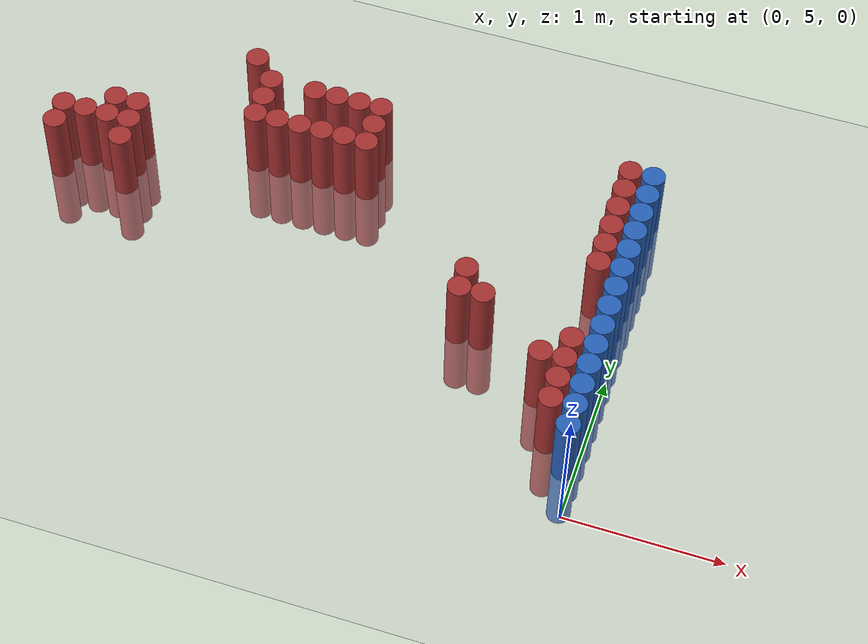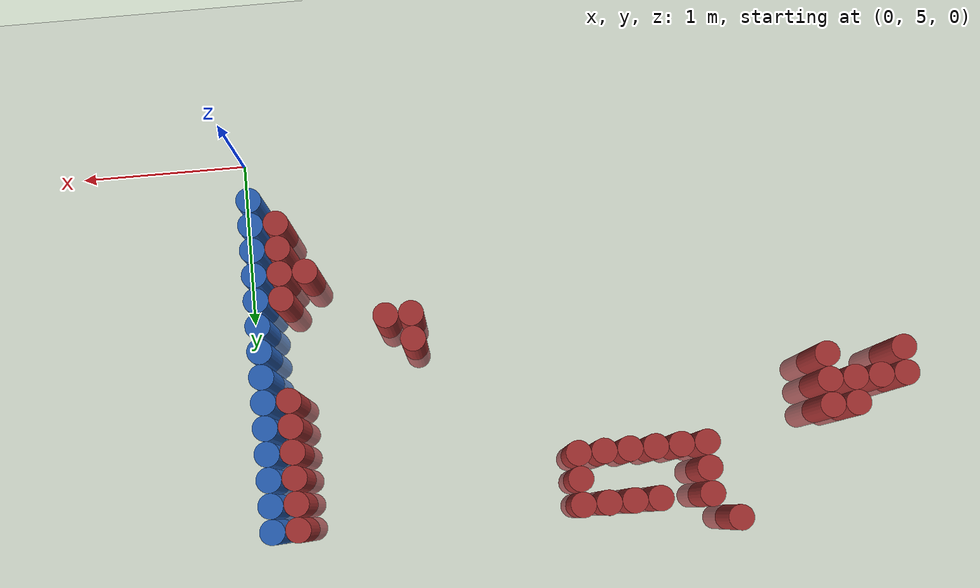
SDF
<sdf version="1.6">
 <world name="default">
  <model name="ground_plane">
   <static>1</static>
   <link name="link">
    <collision name="collision">
     <geometry><plane><normal>0 0 1</normal><size>100 100</size></plane></geometry>
     <surface><friction><ode><mu>100</mu><mu2>50</mu2></ode></friction></surface>
    </collision>
    <visual name="visual">
     <cast_shadows>0</cast_shadows>
     <geometry><plane><normal>0 0 1</normal><size>100 100</size></plane></geometry>
     <material>
      <script><uri>file://media/materials/scripts/gazebo.material</uri><name>Gazebo/Grey</name></script>
     </material>
    </visual>
   </link>
  </model>
  <model name="unit_cylinder_150">
   <static>1</static>
   <pose>-3.825000 6.525000 0.000000 0.000000 0.000000 0.000000</pose>
   <link name="link">
    <inertial>
     <mass>1</mass>
     <inertia><ixx>0.145833</ixx><ixy>0</ixy><ixz>0</ixz><iyy>0.145833</iyy><iyz>0</iyz><izz>0.125</izz></inertia>
    </inertial>
    <collision name="collision">
     <geometry><cylinder><radius>0.075000</radius><length>1</length></cylinder></geometry>
    </collision>
    <visual name="visual">
     <geometry><cylinder><radius>0.075000</radius><length>1</length></cylinder></geometry>
     <material>
      <ambient>0.648000 0.192000 0.192000 1</ambient>
      <diffuse>0.648000 0.192000 0.192000 1</diffuse>
     </material>
     <material>
      <script><name>Gazebo/Grey</name><uri>file://media/materials/scripts/gazebo.material</uri></script>
     </material>
    </visual>
   </link>
  </model>
  <model name="unit_cylinder_151">
   <static>1</static>
   <pose>-3.825000 6.675000 0.000000 0.000000 0.000000 0.000000</pose>
   <link name="link">
    <inertial>
     <mass>1</mass>
     <inertia><ixx>0.145833</ixx><ixy>0</ixy><ixz>0</ixz><iyy>0.145833</iyy><iyz>0</iyz><izz>0.125</izz></inertia>
    </inertial>
    <collision name="collision">
     <geometry><cylinder><radius>0.075000</radius><length>1</length></cylinder></geometry>
    </collision>
    <visual name="visual">
     <geometry><cylinder><radius>0.075000</radius><length>1</length></cylinder></geometry>
     <material>
      <ambient>0.648000 0.192000 0.192000 1</ambient>
      <diffuse>0.648000 0.192000 0.192000 1</diffuse>
     </material>
     <material>
      <script><name>Gazebo/Grey</name><uri>file://media/materials/scripts/gazebo.material</uri></script>
     </material>
    </visual>
   </link>
  </model>
  <model name="unit_cylinder_152">
   <static>1</static>
   <pose>-3.675000 6.675000 0.000000 0.000000 0.000000 0.000000</pose>
   <link name="link">
    <inertial>
     <mass>1</mass>
     <inertia><ixx>0.145833</ixx><ixy>0</ixy><ixz>0</ixz><iyy>0.145833</iyy><iyz>0</iyz><izz>0.125</izz></inertia>
    </inertial>
    <collision name="collision">
     <geometry><cylinder><radius>0.075000</radius><length>1</length></cylinder></geometry>
    </collision>
    <visual name="visual">
     <geometry><cylinder><radius>0.075000</radius><length>1</length></cylinder></geometry>
     <material>
      <ambient>0.648000 0.192000 0.192000 1</ambient>
      <diffuse>0.648000 0.192000 0.192000 1</diffuse>
     </material>
     <material>
      <script><name>Gazebo/Grey</name><uri>file://media/materials/scripts/gazebo.material</uri></script>
     </material>
    </visual>
   </link>
  </model>
  <model name="unit_cylinder_153">
   <static>1</static>
   <pose>-3.525000 6.675000 0.000000 0.000000 0.000000 0.000000</pose>
   <link name="link">
    <inertial>
     <mass>1</mass>
     <inertia><ixx>0.145833</ixx><ixy>0</ixy><ixz>0</ixz><iyy>0.145833</iyy><iyz>0</iyz><izz>0.125</izz></inertia>
    </inertial>
    <collision name="collision">
     <geometry><cylinder><radius>0.075000</radius><length>1</length></cylinder></geometry>
    </collision>
    <visual name="visual">
     <geometry><cylinder><radius>0.075000</radius><length>1</length></cylinder></geometry>
     <material>
      <ambient>0.648000 0.192000 0.192000 1</ambient>
      <diffuse>0.648000 0.192000 0.192000 1</diffuse>
     </material>
     <material>
      <script><name>Gazebo/Grey</name><uri>file://media/materials/scripts/gazebo.material</uri></script>
     </material>
    </visual>
   </link>
  </model>
  <model name="unit_cylinder_154">
   <static>1</static>
   <pose>-3.525000 6.825000 0.000000 0.000000 0.000000 0.000000</pose>
   <link name="link">
    <inertial>
     <mass>1</mass>
     <inertia><ixx>0.145833</ixx><ixy>0</ixy><ixz>0</ixz><iyy>0.145833</iyy><iyz>0</iyz><izz>0.125</izz></inertia>
    </inertial>
    <collision name="collision">
     <geometry><cylinder><radius>0.075000</radius><length>1</length></cylinder></geometry>
    </collision>
    <visual name="visual">
     <geometry><cylinder><radius>0.075000</radius><length>1</length></cylinder></geometry>
     <material>
      <ambient>0.648000 0.192000 0.192000 1</ambient>
      <diffuse>0.648000 0.192000 0.192000 1</diffuse>
     </material>
     <material>
      <script><name>Gazebo/Grey</name><uri>file://media/materials/scripts/gazebo.material</uri></script>
     </material>
    </visual>
   </link>
  </model>
  <model name="unit_cylinder_156">
   <static>1</static>
   <pose>-3.375000 6.525000 0.000000 0.000000 0.000000 0.000000</pose>
   <link name="link">
    <inertial>
     <mass>1</mass>
     <inertia><ixx>0.145833</ixx><ixy>0</ixy><ixz>0</ixz><iyy>0.145833</iyy><iyz>0</iyz><izz>0.125</izz></inertia>
    </inertial>
    <collision name="collision">
     <geometry><cylinder><radius>0.075000</radius><length>1</length></cylinder></geometry>
    </collision>
    <visual name="visual">
     <geometry><cylinder><radius>0.075000</radius><length>1</length></cylinder></geometry>
     <material>
      <ambient>0.648000 0.192000 0.192000 1</ambient>
      <diffuse>0.648000 0.192000 0.192000 1</diffuse>
     </material>
     <material>
      <script><name>Gazebo/Grey</name><uri>file://media/materials/scripts/gazebo.material</uri></script>
     </material>
    </visual>
   </link>
  </model>
  <model name="unit_cylinder_157">
   <static>1</static>
   <pose>-3.375000 6.675000 0.000000 0.000000 0.000000 0.000000</pose>
   <link name="link">
    <inertial>
     <mass>1</mass>
     <inertia><ixx>0.145833</ixx><ixy>0</ixy><ixz>0</ixz><iyy>0.145833</iyy><iyz>0</iyz><izz>0.125</izz></inertia>
    </inertial>
    <collision name="collision">
     <geometry><cylinder><radius>0.075000</radius><length>1</length></cylinder></geometry>
    </collision>
    <visual name="visual">
     <geometry><cylinder><radius>0.075000</radius><length>1</length></cylinder></geometry>
     <material>
      <ambient>0.648000 0.192000 0.192000 1</ambient>
      <diffuse>0.648000 0.192000 0.192000 1</diffuse>
     </material>
     <material>
      <script><name>Gazebo/Grey</name><uri>file://media/materials/scripts/gazebo.material</uri></script>
     </material>
    </visual>
   </link>
  </model>
  <model name="unit_cylinder_158">
   <static>1</static>
   <pose>-3.375000 6.825000 0.000000 0.000000 0.000000 0.000000</pose>
   <link name="link">
    <inertial>
     <mass>1</mass>
     <inertia><ixx>0.145833</ixx><ixy>0</ixy><ixz>0</ixz><iyy>0.145833</iyy><iyz>0</iyz><izz>0.125</izz></inertia>
    </inertial>
    <collision name="collision">
     <geometry><cylinder><radius>0.075000</radius><length>1</length></cylinder></geometry>
    </collision>
    <visual name="visual">
     <geometry><cylinder><radius>0.075000</radius><length>1</length></cylinder></geometry>
     <material>
      <ambient>0.648000 0.192000 0.192000 1</ambient>
      <diffuse>0.648000 0.192000 0.192000 1</diffuse>
     </material>
     <material>
      <script><name>Gazebo/Grey</name><uri>file://media/materials/scripts/gazebo.material</uri></script>
     </material>
    </visual>
   </link>
  </model>
  <model name="unit_cylinder_162">
   <static>1</static>
   <pose>-2.775000 7.425000 0.000000 0.000000 0.000000 0.000000</pose>
   <link name="link">
    <inertial>
     <mass>1</mass>
     <inertia><ixx>0.145833</ixx><ixy>0</ixy><ixz>0</ixz><iyy>0.145833</iyy><iyz>0</iyz><izz>0.125</izz></inertia>
    </inertial>
    <collision name="collision">
     <geometry><cylinder><radius>0.075000</radius><length>1</length></cylinder></geometry>
    </collision>
    <visual name="visual">
     <geometry><cylinder><radius>0.075000</radius><length>1</length></cylinder></geometry>
     <material>
      <ambient>0.648000 0.192000 0.192000 1</ambient>
      <diffuse>0.648000 0.192000 0.192000 1</diffuse>
     </material>
     <material>
      <script><name>Gazebo/Grey</name><uri>file://media/materials/scripts/gazebo.material</uri></script>
     </material>
    </visual>
   </link>
  </model>
  <model name="unit_cylinder_164">
   <static>1</static>
   <pose>-2.625000 6.975000 0.000000 0.000000 0.000000 0.000000</pose>
   <link name="link">
    <inertial>
     <mass>1</mass>
     <inertia><ixx>0.145833</ixx><ixy>0</ixy><ixz>0</ixz><iyy>0.145833</iyy><iyz>0</iyz><izz>0.125</izz></inertia>
    </inertial>
    <collision name="collision">
     <geometry><cylinder><radius>0.075000</radius><length>1</length></cylinder></geometry>
    </collision>
    <visual name="visual">
     <geometry><cylinder><radius>0.075000</radius><length>1</length></cylinder></geometry>
     <material>
      <ambient>0.648000 0.192000 0.192000 1</ambient>
      <diffuse>0.648000 0.192000 0.192000 1</diffuse>
     </material>
     <material>
      <script><name>Gazebo/Grey</name><uri>file://media/materials/scripts/gazebo.material</uri></script>
     </material>
    </visual>
   </link>
  </model>
  <model name="unit_cylinder_165">
   <static>1</static>
   <pose>-2.625000 7.125000 0.000000 0.000000 0.000000 0.000000</pose>
   <link name="link">
    <inertial>
     <mass>1</mass>
     <inertia><ixx>0.145833</ixx><ixy>0</ixy><ixz>0</ixz><iyy>0.145833</iyy><iyz>0</iyz><izz>0.125</izz></inertia>
    </inertial>
    <collision name="collision">
     <geometry><cylinder><radius>0.075000</radius><length>1</length></cylinder></geometry>
    </collision>
    <visual name="visual">
     <geometry><cylinder><radius>0.075000</radius><length>1</length></cylinder></geometry>
     <material>
      <ambient>0.648000 0.192000 0.192000 1</ambient>
      <diffuse>0.648000 0.192000 0.192000 1</diffuse>
     </material>
     <material>
      <script><name>Gazebo/Grey</name><uri>file://media/materials/scripts/gazebo.material</uri></script>
     </material>
    </visual>
   </link>
  </model>
  <model name="unit_cylinder_166">
   <static>1</static>
   <pose>-2.625000 7.275000 0.000000 0.000000 0.000000 0.000000</pose>
   <link name="link">
    <inertial>
     <mass>1</mass>
     <inertia><ixx>0.145833</ixx><ixy>0</ixy><ixz>0</ixz><iyy>0.145833</iyy><iyz>0</iyz><izz>0.125</izz></inertia>
    </inertial>
    <collision name="collision">
     <geometry><cylinder><radius>0.075000</radius><length>1</length></cylinder></geometry>
    </collision>
    <visual name="visual">
     <geometry><cylinder><radius>0.075000</radius><length>1</length></cylinder></geometry>
     <material>
      <ambient>0.648000 0.192000 0.192000 1</ambient>
      <diffuse>0.648000 0.192000 0.192000 1</diffuse>
     </material>
     <material>
      <script><name>Gazebo/Grey</name><uri>file://media/materials/scripts/gazebo.material</uri></script>
     </material>
    </visual>
   </link>
  </model>
  <model name="unit_cylinder_170">
   <static>1</static>
   <pose>-2.475000 6.975000 0.000000 0.000000 0.000000 0.000000</pose>
   <link name="link">
    <inertial>
     <mass>1</mass>
     <inertia><ixx>0.145833</ixx><ixy>0</ixy><ixz>0</ixz><iyy>0.145833</iyy><iyz>0</iyz><izz>0.125</izz></inertia>
    </inertial>
    <collision name="collision">
     <geometry><cylinder><radius>0.075000</radius><length>1</length></cylinder></geometry>
    </collision>
    <visual name="visual">
     <geometry><cylinder><radius>0.075000</radius><length>1</length></cylinder></geometry>
     <material>
      <ambient>0.648000 0.192000 0.192000 1</ambient>
      <diffuse>0.648000 0.192000 0.192000 1</diffuse>
     </material>
     <material>
      <script><name>Gazebo/Grey</name><uri>file://media/materials/scripts/gazebo.material</uri></script>
     </material>
    </visual>
   </link>
  </model>
  <model name="unit_cylinder_173">
   <static>1</static>
   <pose>-2.325000 6.975000 0.000000 0.000000 0.000000 0.000000</pose>
   <link name="link">
    <inertial>
     <mass>1</mass>
     <inertia><ixx>0.145833</ixx><ixy>0</ixy><ixz>0</ixz><iyy>0.145833</iyy><iyz>0</iyz><izz>0.125</izz></inertia>
    </inertial>
    <collision name="collision">
     <geometry><cylinder><radius>0.075000</radius><length>1</length></cylinder></geometry>
    </collision>
    <visual name="visual">
     <geometry><cylinder><radius>0.075000</radius><length>1</length></cylinder></geometry>
     <material>
      <ambient>0.648000 0.192000 0.192000 1</ambient>
      <diffuse>0.648000 0.192000 0.192000 1</diffuse>
     </material>
     <material>
      <script><name>Gazebo/Grey</name><uri>file://media/materials/scripts/gazebo.material</uri></script>
     </material>
    </visual>
   </link>
  </model>
  <model name="unit_cylinder_174">
   <static>1</static>
   <pose>-2.325000 7.275000 0.000000 0.000000 0.000000 0.000000</pose>
   <link name="link">
    <inertial>
     <mass>1</mass>
     <inertia><ixx>0.145833</ixx><ixy>0</ixy><ixz>0</ixz><iyy>0.145833</iyy><iyz>0</iyz><izz>0.125</izz></inertia>
    </inertial>
    <collision name="collision">
     <geometry><cylinder><radius>0.075000</radius><length>1</length></cylinder></geometry>
    </collision>
    <visual name="visual">
     <geometry><cylinder><radius>0.075000</radius><length>1</length></cylinder></geometry>
     <material>
      <ambient>0.648000 0.192000 0.192000 1</ambient>
      <diffuse>0.648000 0.192000 0.192000 1</diffuse>
     </material>
     <material>
      <script><name>Gazebo/Grey</name><uri>file://media/materials/scripts/gazebo.material</uri></script>
     </material>
    </visual>
   </link>
  </model>
  <model name="unit_cylinder_176">
   <static>1</static>
   <pose>-2.175000 6.975000 0.000000 0.000000 0.000000 0.000000</pose>
   <link name="link">
    <inertial>
     <mass>1</mass>
     <inertia><ixx>0.145833</ixx><ixy>0</ixy><ixz>0</ixz><iyy>0.145833</iyy><iyz>0</iyz><izz>0.125</izz></inertia>
    </inertial>
    <collision name="collision">
     <geometry><cylinder><radius>0.075000</radius><length>1</length></cylinder></geometry>
    </collision>
    <visual name="visual">
     <geometry><cylinder><radius>0.075000</radius><length>1</length></cylinder></geometry>
     <material>
      <ambient>0.648000 0.192000 0.192000 1</ambient>
      <diffuse>0.648000 0.192000 0.192000 1</diffuse>
     </material>
     <material>
      <script><name>Gazebo/Grey</name><uri>file://media/materials/scripts/gazebo.material</uri></script>
     </material>
    </visual>
   </link>
  </model>
  <model name="unit_cylinder_177">
   <static>1</static>
   <pose>-2.175000 7.275000 0.000000 0.000000 0.000000 0.000000</pose>
   <link name="link">
    <inertial>
     <mass>1</mass>
     <inertia><ixx>0.145833</ixx><ixy>0</ixy><ixz>0</ixz><iyy>0.145833</iyy><iyz>0</iyz><izz>0.125</izz></inertia>
    </inertial>
    <collision name="collision">
     <geometry><cylinder><radius>0.075000</radius><length>1</length></cylinder></geometry>
    </collision>
    <visual name="visual">
     <geometry><cylinder><radius>0.075000</radius><length>1</length></cylinder></geometry>
     <material>
      <ambient>0.648000 0.192000 0.192000 1</ambient>
      <diffuse>0.648000 0.192000 0.192000 1</diffuse>
     </material>
     <material>
      <script><name>Gazebo/Grey</name><uri>file://media/materials/scripts/gazebo.material</uri></script>
     </material>
    </visual>
   </link>
  </model>
  <model name="unit_cylinder_178">
   <static>1</static>
   <pose>-2.025000 6.975000 0.000000 0.000000 0.000000 0.000000</pose>
   <link name="link">
    <inertial>
     <mass>1</mass>
     <inertia><ixx>0.145833</ixx><ixy>0</ixy><ixz>0</ixz><iyy>0.145833</iyy><iyz>0</iyz><izz>0.125</izz></inertia>
    </inertial>
    <collision name="collision">
     <geometry><cylinder><radius>0.075000</radius><length>1</length></cylinder></geometry>
    </collision>
    <visual name="visual">
     <geometry><cylinder><radius>0.075000</radius><length>1</length></cylinder></geometry>
     <material>
      <ambient>0.648000 0.192000 0.192000 1</ambient>
      <diffuse>0.648000 0.192000 0.192000 1</diffuse>
     </material>
     <material>
      <script><name>Gazebo/Grey</name><uri>file://media/materials/scripts/gazebo.material</uri></script>
     </material>
    </visual>
   </link>
  </model>
  <model name="unit_cylinder_179">
   <static>1</static>
   <pose>-2.025000 7.275000 0.000000 0.000000 0.000000 0.000000</pose>
   <link name="link">
    <inertial>
     <mass>1</mass>
     <inertia><ixx>0.145833</ixx><ixy>0</ixy><ixz>0</ixz><iyy>0.145833</iyy><iyz>0</iyz><izz>0.125</izz></inertia>
    </inertial>
    <collision name="collision">
     <geometry><cylinder><radius>0.075000</radius><length>1</length></cylinder></geometry>
    </collision>
    <visual name="visual">
     <geometry><cylinder><radius>0.075000</radius><length>1</length></cylinder></geometry>
     <material>
      <ambient>0.648000 0.192000 0.192000 1</ambient>
      <diffuse>0.648000 0.192000 0.192000 1</diffuse>
     </material>
     <material>
      <script><name>Gazebo/Grey</name><uri>file://media/materials/scripts/gazebo.material</uri></script>
     </material>
    </visual>
   </link>
  </model>
  <model name="unit_cylinder_180">
   <static>1</static>
   <pose>-1.875000 6.975000 0.000000 0.000000 0.000000 0.000000</pose>
   <link name="link">
    <inertial>
     <mass>1</mass>
     <inertia><ixx>0.145833</ixx><ixy>0</ixy><ixz>0</ixz><iyy>0.145833</iyy><iyz>0</iyz><izz>0.125</izz></inertia>
    </inertial>
    <collision name="collision">
     <geometry><cylinder><radius>0.075000</radius><length>1</length></cylinder></geometry>
    </collision>
    <visual name="visual">
     <geometry><cylinder><radius>0.075000</radius><length>1</length></cylinder></geometry>
     <material>
      <ambient>0.648000 0.192000 0.192000 1</ambient>
      <diffuse>0.648000 0.192000 0.192000 1</diffuse>
     </material>
     <material>
      <script><name>Gazebo/Grey</name><uri>file://media/materials/scripts/gazebo.material</uri></script>
     </material>
    </visual>
   </link>
  </model>
  <model name="unit_cylinder_181">
   <static>1</static>
   <pose>-1.875000 7.125000 0.000000 0.000000 0.000000 0.000000</pose>
   <link name="link">
    <inertial>
     <mass>1</mass>
     <inertia><ixx>0.145833</ixx><ixy>0</ixy><ixz>0</ixz><iyy>0.145833</iyy><iyz>0</iyz><izz>0.125</izz></inertia>
    </inertial>
    <collision name="collision">
     <geometry><cylinder><radius>0.075000</radius><length>1</length></cylinder></geometry>
    </collision>
    <visual name="visual">
     <geometry><cylinder><radius>0.075000</radius><length>1</length></cylinder></geometry>
     <material>
      <ambient>0.648000 0.192000 0.192000 1</ambient>
      <diffuse>0.648000 0.192000 0.192000 1</diffuse>
     </material>
     <material>
      <script><name>Gazebo/Grey</name><uri>file://media/materials/scripts/gazebo.material</uri></script>
     </material>
    </visual>
   </link>
  </model>
  <model name="unit_cylinder_182">
   <static>1</static>
   <pose>-1.875000 7.275000 0.000000 0.000000 0.000000 0.000000</pose>
   <link name="link">
    <inertial>
     <mass>1</mass>
     <inertia><ixx>0.145833</ixx><ixy>0</ixy><ixz>0</ixz><iyy>0.145833</iyy><iyz>0</iyz><izz>0.125</izz></inertia>
    </inertial>
    <collision name="collision">
     <geometry><cylinder><radius>0.075000</radius><length>1</length></cylinder></geometry>
    </collision>
    <visual name="visual">
     <geometry><cylinder><radius>0.075000</radius><length>1</length></cylinder></geometry>
     <material>
      <ambient>0.648000 0.192000 0.192000 1</ambient>
      <diffuse>0.648000 0.192000 0.192000 1</diffuse>
     </material>
     <material>
      <script><name>Gazebo/Grey</name><uri>file://media/materials/scripts/gazebo.material</uri></script>
     </material>
    </visual>
   </link>
  </model>
  <model name="unit_cylinder_188">
   <static>1</static>
   <pose>-0.975000 6.075000 0.000000 0.000000 0.000000 0.000000</pose>
   <link name="link">
    <inertial>
     <mass>1</mass>
     <inertia><ixx>0.145833</ixx><ixy>0</ixy><ixz>0</ixz><iyy>0.145833</iyy><iyz>0</iyz><izz>0.125</izz></inertia>
    </inertial>
    <collision name="collision">
     <geometry><cylinder><radius>0.075000</radius><length>1</length></cylinder></geometry>
    </collision>
    <visual name="visual">
     <geometry><cylinder><radius>0.075000</radius><length>1</length></cylinder></geometry>
     <material>
      <ambient>0.648000 0.192000 0.192000 1</ambient>
      <diffuse>0.648000 0.192000 0.192000 1</diffuse>
     </material>
     <material>
      <script><name>Gazebo/Grey</name><uri>file://media/materials/scripts/gazebo.material</uri></script>
     </material>
    </visual>
   </link>
  </model>
  <model name="unit_cylinder_189">
   <static>1</static>
   <pose>-0.975000 6.225000 0.000000 0.000000 0.000000 0.000000</pose>
   <link name="link">
    <inertial>
     <mass>1</mass>
     <inertia><ixx>0.145833</ixx><ixy>0</ixy><ixz>0</ixz><iyy>0.145833</iyy><iyz>0</iyz><izz>0.125</izz></inertia>
    </inertial>
    <collision name="collision">
     <geometry><cylinder><radius>0.075000</radius><length>1</length></cylinder></geometry>
    </collision>
    <visual name="visual">
     <geometry><cylinder><radius>0.075000</radius><length>1</length></cylinder></geometry>
     <material>
      <ambient>0.648000 0.192000 0.192000 1</ambient>
      <diffuse>0.648000 0.192000 0.192000 1</diffuse>
     </material>
     <material>
      <script><name>Gazebo/Grey</name><uri>file://media/materials/scripts/gazebo.material</uri></script>
     </material>
    </visual>
   </link>
  </model>
  <model name="unit_cylinder_190">
   <static>1</static>
   <pose>-0.825000 6.075000 0.000000 0.000000 0.000000 0.000000</pose>
   <link name="link">
    <inertial>
     <mass>1</mass>
     <inertia><ixx>0.145833</ixx><ixy>0</ixy><ixz>0</ixz><iyy>0.145833</iyy><iyz>0</iyz><izz>0.125</izz></inertia>
    </inertial>
    <collision name="collision">
     <geometry><cylinder><radius>0.075000</radius><length>1</length></cylinder></geometry>
    </collision>
    <visual name="visual">
     <geometry><cylinder><radius>0.075000</radius><length>1</length></cylinder></geometry>
     <material>
      <ambient>0.648000 0.192000 0.192000 1</ambient>
      <diffuse>0.648000 0.192000 0.192000 1</diffuse>
     </material>
     <material>
      <script><name>Gazebo/Grey</name><uri>file://media/materials/scripts/gazebo.material</uri></script>
     </material>
    </visual>
   </link>
  </model>
  <model name="unit_cylinder_193">
   <static>1</static>
   <pose>-0.375000 5.775000 0.000000 0.000000 0.000000 0.000000</pose>
   <link name="link">
    <inertial>
     <mass>1</mass>
     <inertia><ixx>0.145833</ixx><ixy>0</ixy><ixz>0</ixz><iyy>0.145833</iyy><iyz>0</iyz><izz>0.125</izz></inertia>
    </inertial>
    <collision name="collision">
     <geometry><cylinder><radius>0.075000</radius><length>1</length></cylinder></geometry>
    </collision>
    <visual name="visual">
     <geometry><cylinder><radius>0.075000</radius><length>1</length></cylinder></geometry>
     <material>
      <ambient>0.648000 0.192000 0.192000 1</ambient>
      <diffuse>0.648000 0.192000 0.192000 1</diffuse>
     </material>
     <material>
      <script><name>Gazebo/Grey</name><uri>file://media/materials/scripts/gazebo.material</uri></script>
     </material>
    </visual>
   </link>
  </model>
  <model name="unit_cylinder_201">
   <static>1</static>
   <pose>-0.225000 5.475000 0.000000 0.000000 0.000000 0.000000</pose>
   <link name="link">
    <inertial>
     <mass>1</mass>
     <inertia><ixx>0.145833</ixx><ixy>0</ixy><ixz>0</ixz><iyy>0.145833</iyy><iyz>0</iyz><izz>0.125</izz></inertia>
    </inertial>
    <collision name="collision">
     <geometry><cylinder><radius>0.075000</radius><length>1</length></cylinder></geometry>
    </collision>
    <visual name="visual">
     <geometry><cylinder><radius>0.075000</radius><length>1</length></cylinder></geometry>
     <material>
      <ambient>0.648000 0.192000 0.192000 1</ambient>
      <diffuse>0.648000 0.192000 0.192000 1</diffuse>
     </material>
     <material>
      <script><name>Gazebo/Grey</name><uri>file://media/materials/scripts/gazebo.material</uri></script>
     </material>
    </visual>
   </link>
  </model>
  <model name="unit_cylinder_202">
   <static>1</static>
   <pose>-0.225000 5.625000 0.000000 0.000000 0.000000 0.000000</pose>
   <link name="link">
    <inertial>
     <mass>1</mass>
     <inertia><ixx>0.145833</ixx><ixy>0</ixy><ixz>0</ixz><iyy>0.145833</iyy><iyz>0</iyz><izz>0.125</izz></inertia>
    </inertial>
    <collision name="collision">
     <geometry><cylinder><radius>0.075000</radius><length>1</length></cylinder></geometry>
    </collision>
    <visual name="visual">
     <geometry><cylinder><radius>0.075000</radius><length>1</length></cylinder></geometry>
     <material>
      <ambient>0.648000 0.192000 0.192000 1</ambient>
      <diffuse>0.648000 0.192000 0.192000 1</diffuse>
     </material>
     <material>
      <script><name>Gazebo/Grey</name><uri>file://media/materials/scripts/gazebo.material</uri></script>
     </material>
    </visual>
   </link>
  </model>
  <model name="unit_cylinder_203">
   <static>1</static>
   <pose>-0.225000 5.775000 0.000000 0.000000 0.000000 0.000000</pose>
   <link name="link">
    <inertial>
     <mass>1</mass>
     <inertia><ixx>0.145833</ixx><ixy>0</ixy><ixz>0</ixz><iyy>0.145833</iyy><iyz>0</iyz><izz>0.125</izz></inertia>
    </inertial>
    <collision name="collision">
     <geometry><cylinder><radius>0.075000</radius><length>1</length></cylinder></geometry>
    </collision>
    <visual name="visual">
     <geometry><cylinder><radius>0.075000</radius><length>1</length></cylinder></geometry>
     <material>
      <ambient>0.648000 0.192000 0.192000 1</ambient>
      <diffuse>0.648000 0.192000 0.192000 1</diffuse>
     </material>
     <material>
      <script><name>Gazebo/Grey</name><uri>file://media/materials/scripts/gazebo.material</uri></script>
     </material>
    </visual>
   </link>
  </model>
  <model name="unit_cylinder_204">
   <static>1</static>
   <pose>-0.225000 5.925000 0.000000 0.000000 0.000000 0.000000</pose>
   <link name="link">
    <inertial>
     <mass>1</mass>
     <inertia><ixx>0.145833</ixx><ixy>0</ixy><ixz>0</ixz><iyy>0.145833</iyy><iyz>0</iyz><izz>0.125</izz></inertia>
    </inertial>
    <collision name="collision">
     <geometry><cylinder><radius>0.075000</radius><length>1</length></cylinder></geometry>
    </collision>
    <visual name="visual">
     <geometry><cylinder><radius>0.075000</radius><length>1</length></cylinder></geometry>
     <material>
      <ambient>0.648000 0.192000 0.192000 1</ambient>
      <diffuse>0.648000 0.192000 0.192000 1</diffuse>
     </material>
     <material>
      <script><name>Gazebo/Grey</name><uri>file://media/materials/scripts/gazebo.material</uri></script>
     </material>
    </visual>
   </link>
  </model>
  <model name="unit_cylinder_205">
   <static>1</static>
   <pose>-0.225000 6.525000 0.000000 0.000000 0.000000 0.000000</pose>
   <link name="link">
    <inertial>
     <mass>1</mass>
     <inertia><ixx>0.145833</ixx><ixy>0</ixy><ixz>0</ixz><iyy>0.145833</iyy><iyz>0</iyz><izz>0.125</izz></inertia>
    </inertial>
    <collision name="collision">
     <geometry><cylinder><radius>0.075000</radius><length>1</length></cylinder></geometry>
    </collision>
    <visual name="visual">
     <geometry><cylinder><radius>0.075000</radius><length>1</length></cylinder></geometry>
     <material>
      <ambient>0.648000 0.192000 0.192000 1</ambient>
      <diffuse>0.648000 0.192000 0.192000 1</diffuse>
     </material>
     <material>
      <script><name>Gazebo/Grey</name><uri>file://media/materials/scripts/gazebo.material</uri></script>
     </material>
    </visual>
   </link>
  </model>
  <model name="unit_cylinder_206">
   <static>1</static>
   <pose>-0.225000 6.675000 0.000000 0.000000 0.000000 0.000000</pose>
   <link name="link">
    <inertial>
     <mass>1</mass>
     <inertia><ixx>0.145833</ixx><ixy>0</ixy><ixz>0</ixz><iyy>0.145833</iyy><iyz>0</iyz><izz>0.125</izz></inertia>
    </inertial>
    <collision name="collision">
     <geometry><cylinder><radius>0.075000</radius><length>1</length></cylinder></geometry>
    </collision>
    <visual name="visual">
     <geometry><cylinder><radius>0.075000</radius><length>1</length></cylinder></geometry>
     <material>
      <ambient>0.648000 0.192000 0.192000 1</ambient>
      <diffuse>0.648000 0.192000 0.192000 1</diffuse>
     </material>
     <material>
      <script><name>Gazebo/Grey</name><uri>file://media/materials/scripts/gazebo.material</uri></script>
     </material>
    </visual>
   </link>
  </model>
  <model name="unit_cylinder_207">
   <static>1</static>
   <pose>-0.225000 6.825000 0.000000 0.000000 0.000000 0.000000</pose>
   <link name="link">
    <inertial>
     <mass>1</mass>
     <inertia><ixx>0.145833</ixx><ixy>0</ixy><ixz>0</ixz><iyy>0.145833</iyy><iyz>0</iyz><izz>0.125</izz></inertia>
    </inertial>
    <collision name="collision">
     <geometry><cylinder><radius>0.075000</radius><length>1</length></cylinder></geometry>
    </collision>
    <visual name="visual">
     <geometry><cylinder><radius>0.075000</radius><length>1</length></cylinder></geometry>
     <material>
      <ambient>0.648000 0.192000 0.192000 1</ambient>
      <diffuse>0.648000 0.192000 0.192000 1</diffuse>
     </material>
     <material>
      <script><name>Gazebo/Grey</name><uri>file://media/materials/scripts/gazebo.material</uri></script>
     </material>
    </visual>
   </link>
  </model>
  <model name="unit_cylinder_208">
   <static>1</static>
   <pose>-0.225000 6.975000 0.000000 0.000000 0.000000 0.000000</pose>
   <link name="link">
    <inertial>
     <mass>1</mass>
     <inertia><ixx>0.145833</ixx><ixy>0</ixy><ixz>0</ixz><iyy>0.145833</iyy><iyz>0</iyz><izz>0.125</izz></inertia>
    </inertial>
    <collision name="collision">
     <geometry><cylinder><radius>0.075000</radius><length>1</length></cylinder></geometry>
    </collision>
    <visual name="visual">
     <geometry><cylinder><radius>0.075000</radius><length>1</length></cylinder></geometry>
     <material>
      <ambient>0.648000 0.192000 0.192000 1</ambient>
      <diffuse>0.648000 0.192000 0.192000 1</diffuse>
     </material>
     <material>
      <script><name>Gazebo/Grey</name><uri>file://media/materials/scripts/gazebo.material</uri></script>
     </material>
    </visual>
   </link>
  </model>
  <model name="unit_cylinder_209">
   <static>1</static>
   <pose>-0.225000 7.125000 0.000000 0.000000 0.000000 0.000000</pose>
   <link name="link">
    <inertial>
     <mass>1</mass>
     <inertia><ixx>0.145833</ixx><ixy>0</ixy><ixz>0</ixz><iyy>0.145833</iyy><iyz>0</iyz><izz>0.125</izz></inertia>
    </inertial>
    <collision name="collision">
     <geometry><cylinder><radius>0.075000</radius><length>1</length></cylinder></geometry>
    </collision>
    <visual name="visual">
     <geometry><cylinder><radius>0.075000</radius><length>1</length></cylinder></geometry>
     <material>
      <ambient>0.648000 0.192000 0.192000 1</ambient>
      <diffuse>0.648000 0.192000 0.192000 1</diffuse>
     </material>
     <material>
      <script><name>Gazebo/Grey</name><uri>file://media/materials/scripts/gazebo.material</uri></script>
     </material>
    </visual>
   </link>
  </model>
  <model name="unit_cylinder_210">
   <static>1</static>
   <pose>-0.225000 7.275000 0.000000 0.000000 0.000000 0.000000</pose>
   <link name="link">
    <inertial>
     <mass>1</mass>
     <inertia><ixx>0.145833</ixx><ixy>0</ixy><ixz>0</ixz><iyy>0.145833</iyy><iyz>0</iyz><izz>0.125</izz></inertia>
    </inertial>
    <collision name="collision">
     <geometry><cylinder><radius>0.075000</radius><length>1</length></cylinder></geometry>
    </collision>
    <visual name="visual">
     <geometry><cylinder><radius>0.075000</radius><length>1</length></cylinder></geometry>
     <material>
      <ambient>0.648000 0.192000 0.192000 1</ambient>
      <diffuse>0.648000 0.192000 0.192000 1</diffuse>
     </material>
     <material>
      <script><name>Gazebo/Grey</name><uri>file://media/materials/scripts/gazebo.material</uri></script>
     </material>
    </visual>
   </link>
  </model>
  <model name="unit_cylinder_221">
   <static>1</static>
   <pose>-0.075000 5.325000 0.000000 0.000000 0.000000 0.000000</pose>
   <link name="link">
    <inertial>
     <mass>1</mass>
     <inertia><ixx>0.145833</ixx><ixy>0</ixy><ixz>0</ixz><iyy>0.145833</iyy><iyz>0</iyz><izz>0.125</izz></inertia>
    </inertial>
    <collision name="collision">
     <geometry><cylinder><radius>0.075000</radius><length>1</length></cylinder></geometry>
    </collision>
    <visual name="visual">
     <geometry><cylinder><radius>0.075000</radius><length>1</length></cylinder></geometry>
     <material>
      <ambient>0.152000 0.379000 0.720000 1</ambient>
      <diffuse>0.152000 0.379000 0.720000 1</diffuse>
     </material>
     <material>
      <script><name>Gazebo/Grey</name><uri>file://media/materials/scripts/gazebo.material</uri></script>
     </material>
    </visual>
   </link>
  </model>
  <model name="unit_cylinder_222">
   <static>1</static>
   <pose>-0.075000 5.475000 0.000000 0.000000 0.000000 0.000000</pose>
   <link name="link">
    <inertial>
     <mass>1</mass>
     <inertia><ixx>0.145833</ixx><ixy>0</ixy><ixz>0</ixz><iyy>0.145833</iyy><iyz>0</iyz><izz>0.125</izz></inertia>
    </inertial>
    <collision name="collision">
     <geometry><cylinder><radius>0.075000</radius><length>1</length></cylinder></geometry>
    </collision>
    <visual name="visual">
     <geometry><cylinder><radius>0.075000</radius><length>1</length></cylinder></geometry>
     <material>
      <ambient>0.152000 0.379000 0.720000 1</ambient>
      <diffuse>0.152000 0.379000 0.720000 1</diffuse>
     </material>
     <material>
      <script><name>Gazebo/Grey</name><uri>file://media/materials/scripts/gazebo.material</uri></script>
     </material>
    </visual>
   </link>
  </model>
  <model name="unit_cylinder_223">
   <static>1</static>
   <pose>-0.075000 5.625000 0.000000 0.000000 0.000000 0.000000</pose>
   <link name="link">
    <inertial>
     <mass>1</mass>
     <inertia><ixx>0.145833</ixx><ixy>0</ixy><ixz>0</ixz><iyy>0.145833</iyy><iyz>0</iyz><izz>0.125</izz></inertia>
    </inertial>
    <collision name="collision">
     <geometry><cylinder><radius>0.075000</radius><length>1</length></cylinder></geometry>
    </collision>
    <visual name="visual">
     <geometry><cylinder><radius>0.075000</radius><length>1</length></cylinder></geometry>
     <material>
      <ambient>0.152000 0.379000 0.720000 1</ambient>
      <diffuse>0.152000 0.379000 0.720000 1</diffuse>
     </material>
     <material>
      <script><name>Gazebo/Grey</name><uri>file://media/materials/scripts/gazebo.material</uri></script>
     </material>
    </visual>
   </link>
  </model>
  <model name="unit_cylinder_224">
   <static>1</static>
   <pose>-0.075000 5.775000 0.000000 0.000000 0.000000 0.000000</pose>
   <link name="link">
    <inertial>
     <mass>1</mass>
     <inertia><ixx>0.145833</ixx><ixy>0</ixy><ixz>0</ixz><iyy>0.145833</iyy><iyz>0</iyz><izz>0.125</izz></inertia>
    </inertial>
    <collision name="collision">
     <geometry><cylinder><radius>0.075000</radius><length>1</length></cylinder></geometry>
    </collision>
    <visual name="visual">
     <geometry><cylinder><radius>0.075000</radius><length>1</length></cylinder></geometry>
     <material>
      <ambient>0.152000 0.379000 0.720000 1</ambient>
      <diffuse>0.152000 0.379000 0.720000 1</diffuse>
     </material>
     <material>
      <script><name>Gazebo/Grey</name><uri>file://media/materials/scripts/gazebo.material</uri></script>
     </material>
    </visual>
   </link>
  </model>
  <model name="unit_cylinder_225">
   <static>1</static>
   <pose>-0.075000 5.925000 0.000000 0.000000 0.000000 0.000000</pose>
   <link name="link">
    <inertial>
     <mass>1</mass>
     <inertia><ixx>0.145833</ixx><ixy>0</ixy><ixz>0</ixz><iyy>0.145833</iyy><iyz>0</iyz><izz>0.125</izz></inertia>
    </inertial>
    <collision name="collision">
     <geometry><cylinder><radius>0.075000</radius><length>1</length></cylinder></geometry>
    </collision>
    <visual name="visual">
     <geometry><cylinder><radius>0.075000</radius><length>1</length></cylinder></geometry>
     <material>
      <ambient>0.152000 0.379000 0.720000 1</ambient>
      <diffuse>0.152000 0.379000 0.720000 1</diffuse>
     </material>
     <material>
      <script><name>Gazebo/Grey</name><uri>file://media/materials/scripts/gazebo.material</uri></script>
     </material>
    </visual>
   </link>
  </model>
  <model name="unit_cylinder_226">
   <static>1</static>
   <pose>-0.075000 6.075000 0.000000 0.000000 0.000000 0.000000</pose>
   <link name="link">
    <inertial>
     <mass>1</mass>
     <inertia><ixx>0.145833</ixx><ixy>0</ixy><ixz>0</ixz><iyy>0.145833</iyy><iyz>0</iyz><izz>0.125</izz></inertia>
    </inertial>
    <collision name="collision">
     <geometry><cylinder><radius>0.075000</radius><length>1</length></cylinder></geometry>
    </collision>
    <visual name="visual">
     <geometry><cylinder><radius>0.075000</radius><length>1</length></cylinder></geometry>
     <material>
      <ambient>0.152000 0.379000 0.720000 1</ambient>
      <diffuse>0.152000 0.379000 0.720000 1</diffuse>
     </material>
     <material>
      <script><name>Gazebo/Grey</name><uri>file://media/materials/scripts/gazebo.material</uri></script>
     </material>
    </visual>
   </link>
  </model>
  <model name="unit_cylinder_227">
   <static>1</static>
   <pose>-0.075000 6.225000 0.000000 0.000000 0.000000 0.000000</pose>
   <link name="link">
    <inertial>
     <mass>1</mass>
     <inertia><ixx>0.145833</ixx><ixy>0</ixy><ixz>0</ixz><iyy>0.145833</iyy><iyz>0</iyz><izz>0.125</izz></inertia>
    </inertial>
    <collision name="collision">
     <geometry><cylinder><radius>0.075000</radius><length>1</length></cylinder></geometry>
    </collision>
    <visual name="visual">
     <geometry><cylinder><radius>0.075000</radius><length>1</length></cylinder></geometry>
     <material>
      <ambient>0.152000 0.379000 0.720000 1</ambient>
      <diffuse>0.152000 0.379000 0.720000 1</diffuse>
     </material>
     <material>
      <script><name>Gazebo/Grey</name><uri>file://media/materials/scripts/gazebo.material</uri></script>
     </material>
    </visual>
   </link>
  </model>
  <model name="unit_cylinder_228">
   <static>1</static>
   <pose>-0.075000 6.375000 0.000000 0.000000 0.000000 0.000000</pose>
   <link name="link">
    <inertial>
     <mass>1</mass>
     <inertia><ixx>0.145833</ixx><ixy>0</ixy><ixz>0</ixz><iyy>0.145833</iyy><iyz>0</iyz><izz>0.125</izz></inertia>
    </inertial>
    <collision name="collision">
     <geometry><cylinder><radius>0.075000</radius><length>1</length></cylinder></geometry>
    </collision>
    <visual name="visual">
     <geometry><cylinder><radius>0.075000</radius><length>1</length></cylinder></geometry>
     <material>
      <ambient>0.152000 0.379000 0.720000 1</ambient>
      <diffuse>0.152000 0.379000 0.720000 1</diffuse>
     </material>
     <material>
      <script><name>Gazebo/Grey</name><uri>file://media/materials/scripts/gazebo.material</uri></script>
     </material>
    </visual>
   </link>
  </model>
  <model name="unit_cylinder_229">
   <static>1</static>
   <pose>-0.075000 6.525000 0.000000 0.000000 0.000000 0.000000</pose>
   <link name="link">
    <inertial>
     <mass>1</mass>
     <inertia><ixx>0.145833</ixx><ixy>0</ixy><ixz>0</ixz><iyy>0.145833</iyy><iyz>0</iyz><izz>0.125</izz></inertia>
    </inertial>
    <collision name="collision">
     <geometry><cylinder><radius>0.075000</radius><length>1</length></cylinder></geometry>
    </collision>
    <visual name="visual">
     <geometry><cylinder><radius>0.075000</radius><length>1</length></cylinder></geometry>
     <material>
      <ambient>0.152000 0.379000 0.720000 1</ambient>
      <diffuse>0.152000 0.379000 0.720000 1</diffuse>
     </material>
     <material>
      <script><name>Gazebo/Grey</name><uri>file://media/materials/scripts/gazebo.material</uri></script>
     </material>
    </visual>
   </link>
  </model>
  <model name="unit_cylinder_230">
   <static>1</static>
   <pose>-0.075000 6.675000 0.000000 0.000000 0.000000 0.000000</pose>
   <link name="link">
    <inertial>
     <mass>1</mass>
     <inertia><ixx>0.145833</ixx><ixy>0</ixy><ixz>0</ixz><iyy>0.145833</iyy><iyz>0</iyz><izz>0.125</izz></inertia>
    </inertial>
    <collision name="collision">
     <geometry><cylinder><radius>0.075000</radius><length>1</length></cylinder></geometry>
    </collision>
    <visual name="visual">
     <geometry><cylinder><radius>0.075000</radius><length>1</length></cylinder></geometry>
     <material>
      <ambient>0.152000 0.379000 0.720000 1</ambient>
      <diffuse>0.152000 0.379000 0.720000 1</diffuse>
     </material>
     <material>
      <script><name>Gazebo/Grey</name><uri>file://media/materials/scripts/gazebo.material</uri></script>
     </material>
    </visual>
   </link>
  </model>
  <model name="unit_cylinder_231">
   <static>1</static>
   <pose>-0.075000 6.825000 0.000000 0.000000 0.000000 0.000000</pose>
   <link name="link">
    <inertial>
     <mass>1</mass>
     <inertia><ixx>0.145833</ixx><ixy>0</ixy><ixz>0</ixz><iyy>0.145833</iyy><iyz>0</iyz><izz>0.125</izz></inertia>
    </inertial>
    <collision name="collision">
     <geometry><cylinder><radius>0.075000</radius><length>1</length></cylinder></geometry>
    </collision>
    <visual name="visual">
     <geometry><cylinder><radius>0.075000</radius><length>1</length></cylinder></geometry>
     <material>
      <ambient>0.152000 0.379000 0.720000 1</ambient>
      <diffuse>0.152000 0.379000 0.720000 1</diffuse>
     </material>
     <material>
      <script><name>Gazebo/Grey</name><uri>file://media/materials/scripts/gazebo.material</uri></script>
     </material>
    </visual>
   </link>
  </model>
  <model name="unit_cylinder_232">
   <static>1</static>
   <pose>-0.075000 6.975000 0.000000 0.000000 0.000000 0.000000</pose>
   <link name="link">
    <inertial>
     <mass>1</mass>
     <inertia><ixx>0.145833</ixx><ixy>0</ixy><ixz>0</ixz><iyy>0.145833</iyy><iyz>0</iyz><izz>0.125</izz></inertia>
    </inertial>
    <collision name="collision">
     <geometry><cylinder><radius>0.075000</radius><length>1</length></cylinder></geometry>
    </collision>
    <visual name="visual">
     <geometry><cylinder><radius>0.075000</radius><length>1</length></cylinder></geometry>
     <material>
      <ambient>0.152000 0.379000 0.720000 1</ambient>
      <diffuse>0.152000 0.379000 0.720000 1</diffuse>
     </material>
     <material>
      <script><name>Gazebo/Grey</name><uri>file://media/materials/scripts/gazebo.material</uri></script>
     </material>
    </visual>
   </link>
  </model>
  <model name="unit_cylinder_233">
   <static>1</static>
   <pose>-0.075000 7.125000 0.000000 0.000000 0.000000 0.000000</pose>
   <link name="link">
    <inertial>
     <mass>1</mass>
     <inertia><ixx>0.145833</ixx><ixy>0</ixy><ixz>0</ixz><iyy>0.145833</iyy><iyz>0</iyz><izz>0.125</izz></inertia>
    </inertial>
    <collision name="collision">
     <geometry><cylinder><radius>0.075000</radius><length>1</length></cylinder></geometry>
    </collision>
    <visual name="visual">
     <geometry><cylinder><radius>0.075000</radius><length>1</length></cylinder></geometry>
     <material>
      <ambient>0.152000 0.379000 0.720000 1</ambient>
      <diffuse>0.152000 0.379000 0.720000 1</diffuse>
     </material>
     <material>
      <script><name>Gazebo/Grey</name><uri>file://media/materials/scripts/gazebo.material</uri></script>
     </material>
    </visual>
   </link>
  </model>
  <model name="unit_cylinder_234">
   <static>1</static>
   <pose>-0.075000 7.275000 0.000000 0.000000 0.000000 0.000000</pose>
   <link name="link">
    <inertial>
     <mass>1</mass>
     <inertia><ixx>0.145833</ixx><ixy>0</ixy><ixz>0</ixz><iyy>0.145833</iyy><iyz>0</iyz><izz>0.125</izz></inertia>
    </inertial>
    <collision name="collision">
     <geometry><cylinder><radius>0.075000</radius><length>1</length></cylinder></geometry>
    </collision>
    <visual name="visual">
     <geometry><cylinder><radius>0.075000</radius><length>1</length></cylinder></geometry>
     <material>
      <ambient>0.152000 0.379000 0.720000 1</ambient>
      <diffuse>0.152000 0.379000 0.720000 1</diffuse>
     </material>
     <material>
      <script><name>Gazebo/Grey</name><uri>file://media/materials/scripts/gazebo.material</uri></script>
     </material>
    </visual>
   </link>
  </model>
 </world>
</sdf>
